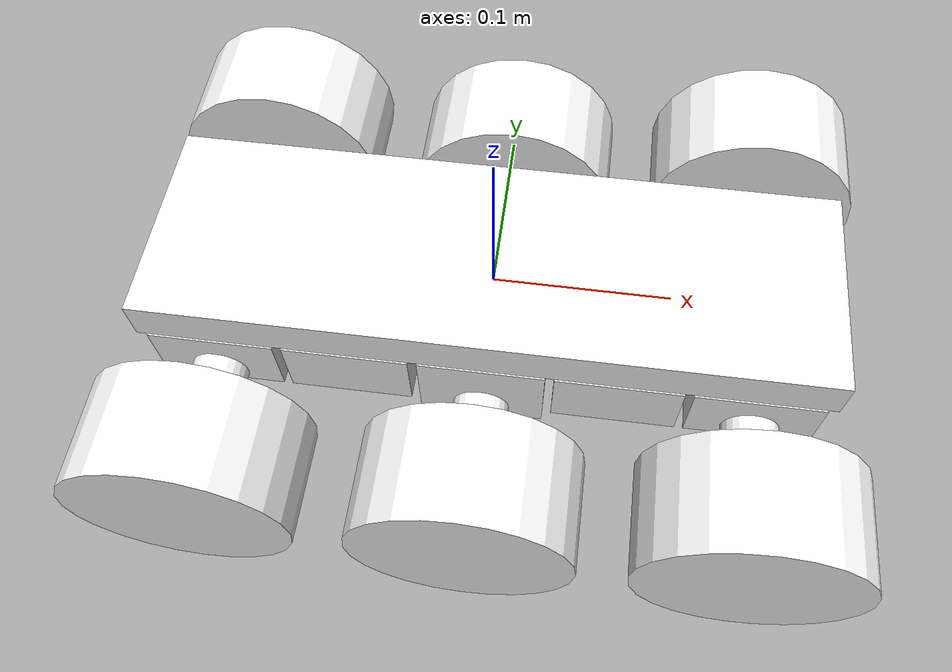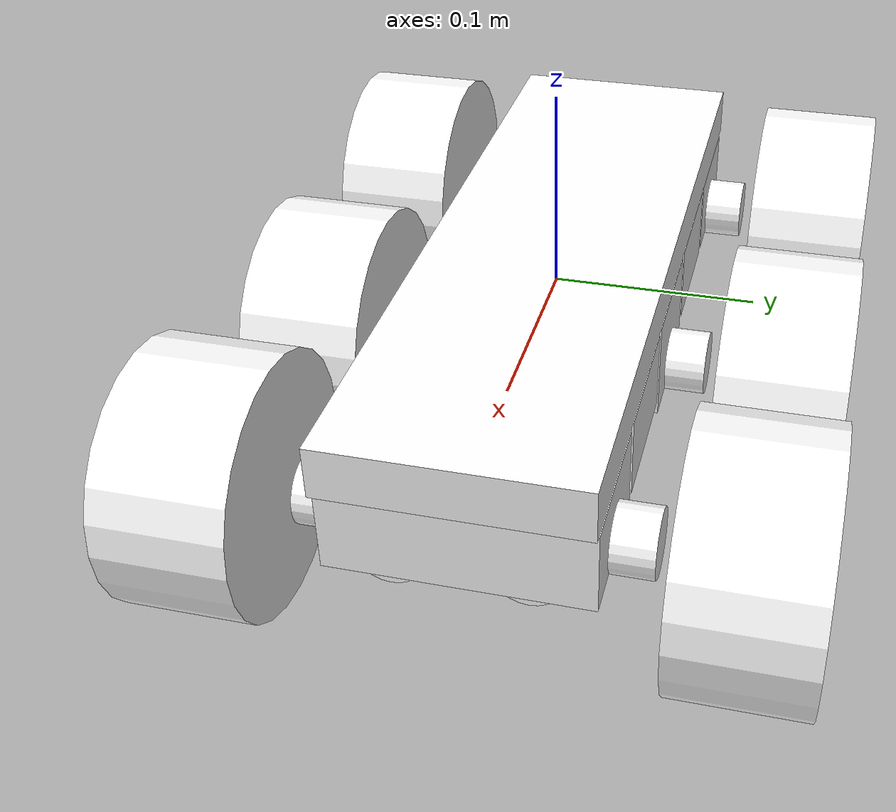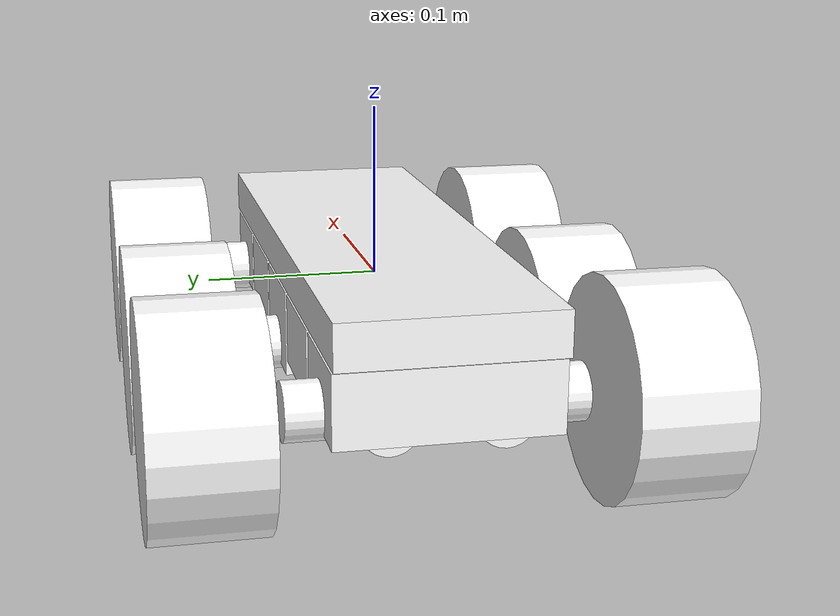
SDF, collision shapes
<sdf version="1.9">
 <model name="wildthumper_with_camera">
  <static>0</static>
  <link name="base_link">
   <inertial>
    <mass>0.01</mass>
    <inertia><ixx>0.01</ixx><ixy>0</ixy><ixz>0</ixz><iyy>0.01</iyy><iyz>0</iyz><izz>0.01</izz></inertia>
   </inertial>
   <collision name="base_link_collision">
    <geometry><box><size>0.001 0.001 0.001</size></box></geometry>
   </collision>
   <visual name="base_link_visual">
    <geometry><box><size>0.001 0.001 0.001</size></box></geometry>
    <material>
     <script><name>Gazebo/Orange</name><uri>file://media/materials/scripts/gazebo.material</uri></script>
     <diffuse>1 0.3125 0 1</diffuse>
     <ambient>1 0.3125 0 1</ambient>
    </material>
   </visual>
  </link>
  <joint name="front_small_chassis_joint" type="fixed">
   <pose relative_to="base_link">0.075 0 -0.02 0 0 0</pose>
   <parent>base_link</parent>
   <child>front_small_chassis_link</child>
   <axis>
    <dynamics><damping>1.0</damping></dynamics>
    <xyz>0 0 1</xyz>
    <limit><lower>-1e16</lower><upper>1e16</upper></limit>
   </axis>
  </joint>
  <link name="front_small_chassis_link">
   <pose relative_to="front_small_chassis_joint">0 0 0 0 0 0</pose>
   <inertial>
    <mass>0.2</mass>
    <inertia>
     <ixx>0.0002666666666666667</ixx>
     <ixy>0</ixy>
     <ixz>0</ixz>
     <iyy>0.0001083333333333333</iyy>
     <iyz>0</iyz>
     <izz>0.0003216666666666667</izz>
    </inertia>
   </inertial>
   <collision name="front_small_chassis_link_collision">
    <geometry><box><size>0.07000000000000001 0.12 0.04</size></box></geometry>
   </collision>
   <visual name="front_small_chassis_link_visual">
    <geometry>
     <mesh>
      <scale>1 1 1</scale>
      <uri>model://wildthumper/meshes/bases/small_chassis_with_frame_connector.dae</uri>
     </mesh>
    </geometry>
    <material>
     <ambient>1 1 1</ambient>
     <diffuse>1 1 1</diffuse>
     <specular>1 1 1</specular>
     <pbr>
      <metal>
       <albedo_map>model://wildthumper/materials/textures/black_metal/black_metal_diffuse.jpg</albedo_map>
       <metalness_map>model://wildthumper/materials/textures/black_metal/black_metal_metallic.jpg</metalness_map>
       <normal_map>model://wildthumper/materials/textures/black_metal/black_metal_normal.jpg</normal_map>
       <roughness_map>model://wildthumper/materials/textures/black_metal/black_metal_roughness.jpg</roughness_map>
       <roughness>1.0</roughness>
       <metalness>1.0</metalness>
      </metal>
     </pbr>
    </material>
   </visual>
  </link>
  <joint name="front_wheel_chassis_short_joint" type="fixed">
   <pose relative_to="base_link">0.15 0 -0.02 0 0 0</pose>
   <parent>base_link</parent>
   <child>front_wheel_chassis_short_link</child>
   <axis>
    <dynamics><damping>1.0</damping></dynamics>
    <xyz>0 0 1</xyz>
    <limit><lower>-1e16</lower><upper>1e16</upper></limit>
   </axis>
  </joint>
  <link name="front_wheel_chassis_short_link">
   <pose relative_to="front_wheel_chassis_short_joint">0 0 0 0 0 0</pose>
   <inertial>
    <mass>0.2</mass>
    <inertia>
     <ixx>0.0002666666666666667</ixx>
     <ixy>0</ixy>
     <ixz>0</ixz>
     <iyy>0.0001083333333333333</iyy>
     <iyz>0</iyz>
     <izz>0.0003216666666666667</izz>
    </inertia>
   </inertial>
   <collision name="front_wheel_chassis_short_link_collision">
    <geometry><box><size>0.07000000000000001 0.12 0.04</size></box></geometry>
   </collision>
   <visual name="front_wheel_chassis_short_link_visual">
    <geometry>
     <mesh><scale>1 1 1</scale><uri>model://wildthumper/meshes/bases/wheel_chassis_short.dae</uri></mesh>
    </geometry>
    <material>
     <ambient>1 1 1</ambient>
     <diffuse>1 1 1</diffuse>
     <specular>1 1 1</specular>
     <pbr>
      <metal>
       <albedo_map>model://wildthumper/materials/textures/black_metal/black_metal_diffuse.jpg</albedo_map>
       <metalness_map>model://wildthumper/materials/textures/black_metal/black_metal_metallic.jpg</metalness_map>
       <normal_map>model://wildthumper/materials/textures/black_metal/black_metal_normal.jpg</normal_map>
       <roughness_map>model://wildthumper/materials/textures/black_metal/black_metal_roughness.jpg</roughness_map>
       <roughness>1.0</roughness>
       <metalness>1.0</metalness>
      </metal>
     </pbr>
    </material>
   </visual>
  </link>
  <joint name="front_left_motor_asm_joint" type="revolute">
   <pose relative_to="front_wheel_chassis_short_link">0 0.03 -0.01 0 0 0</pose>
   <parent>front_wheel_chassis_short_link</parent>
   <child>front_left_motor_asm_link</child>
   <axis>
    <xyz>1 0 0</xyz>
    <limit><lower>-0.5</lower><upper>0.5</upper><effort>50</effort><velocity>10</velocity></limit>
    <dynamics>
     <damping>0.7</damping>
     <friction>0</friction>
     <spring_reference>0</spring_reference>
     <spring_stiffness>3</spring_stiffness>
    </dynamics>
   </axis>
   <physics>
    <provide_feedback>true</provide_feedback>
    <ode>
     <implicit_spring_damper>true</implicit_spring_damper>
     <cfm_damping>true</cfm_damping>
     <limit><cfm>0.0</cfm><erp>0.2</erp></limit>
     <provide_feedback>true</provide_feedback>
    </ode>
   </physics>
  </joint>
  <link name="front_left_motor_asm_link">
   <pose relative_to="front_left_motor_asm_joint">0 0 0 0 0 0</pose>
   <inertial>
    <pose>0 0.025 0 1.570796326794896 0 0</pose>
    <mass>0.1</mass>
    <inertia>
     <ixx>2.723333333333334e-05</ixx>
     <ixy>0</ixy>
     <ixz>0</ixz>
     <iyy>2.723333333333334e-05</iyy>
     <iyz>0</iyz>
     <izz>1.28e-05</izz>
    </inertia>
   </inertial>
   <collision name="front_left_motor_asm_link_collision">
    <pose>0 0 0 0 1.570796326794897 0</pose>
    <geometry><cylinder><length>0.064</length><radius>0.016</radius></cylinder></geometry>
   </collision>
   <collision name="front_left_motor_asm_link_collision_1">
    <pose>0 0.025 0 1.570796326794896 0 0</pose>
    <geometry><cylinder><length>0.05</length><radius>0.016</radius></cylinder></geometry>
   </collision>
   <visual name="front_left_motor_asm_link_visual">
    <geometry>
     <mesh><scale>1 1 1</scale><uri>model://wildthumper/meshes/bases/left_motor_asm.dae</uri></mesh>
    </geometry>
    <material>
     <ambient>1 1 1</ambient>
     <diffuse>1 1 1</diffuse>
     <specular>1 1 1</specular>
     <pbr>
      <metal>
       <albedo_map>model://wildthumper/materials/textures/black_metal/black_metal_diffuse.jpg</albedo_map>
       <metalness_map>model://wildthumper/materials/textures/black_metal/black_metal_metallic.jpg</metalness_map>
       <normal_map>model://wildthumper/materials/textures/black_metal/black_metal_normal.jpg</normal_map>
       <roughness_map>model://wildthumper/materials/textures/black_metal/black_metal_roughness.jpg</roughness_map>
       <roughness>1.0</roughness>
       <metalness>1.0</metalness>
      </metal>
     </pbr>
    </material>
   </visual>
  </link>
  <joint name="front_left_wheel_joint" type="revolute">
   <pose relative_to="front_left_motor_asm_link">0 0.09 0 0 0 0</pose>
   <parent>front_left_motor_asm_link</parent>
   <child>front_left_wheel_link</child>
   <axis>
    <xyz>0 1 0</xyz>
    <limit><lower>-1e16</lower><upper>1e16</upper></limit>
    <dynamics><damping>0.02</damping></dynamics>
   </axis>
  </joint>
  <link name="front_left_wheel_link">
   <pose relative_to="front_left_wheel_joint">0 0 0 0 0 0</pose>
   <inertial>
    <pose>0 0 0 1.570796326794896 0 0</pose>
    <mass>0.19</mass>
    <inertia>
     <ixx>0.0002022409166666667</ixx>
     <ixy>0</ixy>
     <ixz>0</ixz>
     <iyy>0.0002022409166666667</iyy>
     <iyz>1.203706215242022e-35</iyz>
     <izz>0.0002973904999999999</izz>
    </inertia>
   </inertial>
   <collision name="front_left_wheel_link_collision">
    <pose>0 0 0 1.570796326794896 0 0</pose>
    <geometry><cylinder><length>0.062</length><radius>0.062</radius></cylinder></geometry>
    <surface>
     <friction>
      <ode><mu>10.0</mu><mu2>10.0</mu2><fdir1>1 0 0</fdir1><slip1>0.0</slip1><slip2>0.0</slip2></ode>
     </friction>
    </surface>
   </collision>
   <collision name="front_left_wheel_link_fixed_joint_lump__front_left_wheel_adapter_link_collision_1">
    <pose>0 0 0 1.570796326794896 0 0</pose>
    <geometry><cylinder><length>0.024</length><radius>0.005</radius></cylinder></geometry>
   </collision>
   <collision name="front_left_wheel_link_fixed_joint_lump__front_left_wheel_rim_link_collision_2">
    <pose>0 0 0 1.570796326794896 0 0</pose>
    <geometry><cylinder><length>0.05</length><radius>0.03</radius></cylinder></geometry>
   </collision>
   <visual name="front_left_wheel_link_visual">
    <geometry>
     <mesh><scale>1 1 1</scale><uri>model://wildthumper/meshes/wheels/left_wheel_tyre.dae</uri></mesh>
    </geometry>
    <material>
     <ambient>1 1 1</ambient>
     <diffuse>1 1 1</diffuse>
     <specular>1 1 1</specular>
     <pbr>
      <metal>
       <albedo_map>model://wildthumper/materials/textures/rubber_01/rubber_01_diffuse.jpg</albedo_map>
       <normal_map>model://wildthumper/materials/textures/rubber_01/rubber_01_normal.jpg</normal_map>
       <roughness_map>model://wildthumper/materials/textures/rubber_01/rubber_01_roughness.jpg</roughness_map>
       <roughness>1.0</roughness>
       <metalness>0.0</metalness>
      </metal>
     </pbr>
    </material>
   </visual>
   <visual name="front_left_wheel_link_fixed_joint_lump__front_left_wheel_adapter_link_visual_1">
    <geometry>
     <mesh><scale>1 1 1</scale><uri>model://wildthumper/meshes/wheels/left_wheel_adapter.dae</uri></mesh>
    </geometry>
    <material>
     <ambient>1 1 1</ambient>
     <diffuse>1 1 1</diffuse>
     <specular>1 1 1</specular>
     <pbr>
      <metal>
       <albedo_map>model://wildthumper/materials/textures/silver_metal/silver_metal_diffuse.jpg</albedo_map>
       <metalness_map>model://wildthumper/materials/textures/silver_metal/silver_metal_metallic.jpg</metalness_map>
       <normal_map>model://wildthumper/materials/textures/silver_metal/silver_metal_normal.jpg</normal_map>
       <roughness_map>model://wildthumper/materials/textures/silver_metal/silver_metal_roughness.jpg</roughness_map>
       <roughness>1.0</roughness>
       <metalness>1.0</metalness>
      </metal>
     </pbr>
    </material>
   </visual>
   <visual name="front_left_wheel_link_fixed_joint_lump__front_left_wheel_rim_link_visual_2">
    <geometry>
     <mesh><scale>1 1 1</scale><uri>model://wildthumper/meshes/wheels/left_wheel_rim.dae</uri></mesh>
    </geometry>
    <material>
     <ambient>1 1 1</ambient>
     <diffuse>1 1 1</diffuse>
     <specular>1 1 1</specular>
     <pbr>
      <metal>
       <albedo_map>model://wildthumper/materials/textures/red_metal/red_metal_diffuse.jpg</albedo_map>
       <metalness_map>model://wildthumper/materials/textures/red_metal/red_metal_metallic.jpg</metalness_map>
       <normal_map>model://wildthumper/materials/textures/red_metal/red_metal_normal.jpg</normal_map>
       <roughness_map>model://wildthumper/materials/textures/red_metal/red_metal_roughness.jpg</roughness_map>
       <roughness>1.0</roughness>
       <metalness>1.0</metalness>
      </metal>
     </pbr>
    </material>
   </visual>
  </link>
  <joint name="front_right_motor_asm_joint" type="revolute">
   <pose relative_to="front_wheel_chassis_short_link">0 -0.03 -0.01 0 0 0</pose>
   <parent>front_wheel_chassis_short_link</parent>
   <child>front_right_motor_asm_link</child>
   <axis>
    <xyz>1 0 0</xyz>
    <limit><lower>-0.5</lower><upper>0.5</upper><effort>50</effort><velocity>10</velocity></limit>
    <dynamics>
     <damping>0.7</damping>
     <friction>0</friction>
     <spring_reference>0</spring_reference>
     <spring_stiffness>3</spring_stiffness>
    </dynamics>
   </axis>
  </joint>
  <link name="front_right_motor_asm_link">
   <pose relative_to="front_right_motor_asm_joint">0 0 0 0 0 0</pose>
   <inertial>
    <pose>0 -0.025 0 1.570796326794896 0 0</pose>
    <mass>0.1</mass>
    <inertia>
     <ixx>2.723333333333334e-05</ixx>
     <ixy>0</ixy>
     <ixz>0</ixz>
     <iyy>2.723333333333334e-05</iyy>
     <iyz>0</iyz>
     <izz>1.28e-05</izz>
    </inertia>
   </inertial>
   <collision name="front_right_motor_asm_link_collision">
    <pose>0 0 0 0 1.570796326794897 0</pose>
    <geometry><cylinder><length>0.064</length><radius>0.016</radius></cylinder></geometry>
   </collision>
   <collision name="front_right_motor_asm_link_collision_1">
    <pose>0 -0.025 0 1.570796326794896 0 0</pose>
    <geometry><cylinder><length>0.05</length><radius>0.016</radius></cylinder></geometry>
   </collision>
   <visual name="front_right_motor_asm_link_visual">
    <geometry>
     <mesh><scale>1 1 1</scale><uri>model://wildthumper/meshes/bases/right_motor_asm.dae</uri></mesh>
    </geometry>
    <material>
     <ambient>1 1 1</ambient>
     <diffuse>1 1 1</diffuse>
     <specular>1 1 1</specular>
     <pbr>
      <metal>
       <albedo_map>model://wildthumper/materials/textures/black_metal/black_metal_diffuse.jpg</albedo_map>
       <metalness_map>model://wildthumper/materials/textures/black_metal/black_metal_metallic.jpg</metalness_map>
       <normal_map>model://wildthumper/materials/textures/black_metal/black_metal_normal.jpg</normal_map>
       <roughness_map>model://wildthumper/materials/textures/black_metal/black_metal_roughness.jpg</roughness_map>
       <roughness>1.0</roughness>
       <metalness>1.0</metalness>
      </metal>
     </pbr>
    </material>
   </visual>
  </link>
  <joint name="front_right_wheel_joint" type="revolute">
   <pose relative_to="front_right_motor_asm_link">0 -0.09 0 0 0 0</pose>
   <parent>front_right_motor_asm_link</parent>
   <child>front_right_wheel_link</child>
   <axis>
    <xyz>0 1 0</xyz>
    <limit><lower>-1e16</lower><upper>1e16</upper></limit>
    <dynamics><damping>0.02</damping></dynamics>
   </axis>
  </joint>
  <link name="front_right_wheel_link">
   <pose relative_to="front_right_wheel_joint">0 0 0 0 0 0</pose>
   <inertial>
    <pose>0 0 0 1.570796326794896 0 0</pose>
    <mass>0.19</mass>
    <inertia>
     <ixx>0.0002022409166666667</ixx>
     <ixy>0</ixy>
     <ixz>0</ixz>
     <iyy>0.0002022409166666667</iyy>
     <iyz>1.203706215242022e-35</iyz>
     <izz>0.0002973904999999999</izz>
    </inertia>
   </inertial>
   <collision name="front_right_wheel_link_collision">
    <pose>0 0 0 1.570796326794896 0 0</pose>
    <geometry><cylinder><length>0.062</length><radius>0.062</radius></cylinder></geometry>
    <surface>
     <friction>
      <ode><mu>10.0</mu><mu2>10.0</mu2><fdir1>1 0 0</fdir1><slip1>0.0</slip1><slip2>0.0</slip2></ode>
     </friction>
    </surface>
   </collision>
   <collision name="front_right_wheel_link_fixed_joint_lump__front_right_wheel_adapter_link_collision_1">
    <pose>0 0 0 1.570796326794896 0 0</pose>
    <geometry><cylinder><length>0.024</length><radius>0.005</radius></cylinder></geometry>
   </collision>
   <collision name="front_right_wheel_link_fixed_joint_lump__front_right_wheel_rim_link_collision_2">
    <pose>0 0 0 1.570796326794896 0 0</pose>
    <geometry><cylinder><length>0.05</length><radius>0.03</radius></cylinder></geometry>
   </collision>
   <visual name="front_right_wheel_link_visual">
    <geometry>
     <mesh><scale>1 1 1</scale><uri>model://wildthumper/meshes/wheels/right_wheel_tyre.dae</uri></mesh>
    </geometry>
    <material>
     <ambient>1 1 1</ambient>
     <diffuse>1 1 1</diffuse>
     <specular>1 1 1</specular>
     <pbr>
      <metal>
       <albedo_map>model://wildthumper/materials/textures/rubber_01/rubber_01_diffuse.jpg</albedo_map>
       <normal_map>model://wildthumper/materials/textures/rubber_01/rubber_01_normal.jpg</normal_map>
       <roughness_map>model://wildthumper/materials/textures/rubber_01/rubber_01_roughness.jpg</roughness_map>
       <roughness>1.0</roughness>
       <metalness>0.0</metalness>
      </metal>
     </pbr>
    </material>
   </visual>
   <visual name="front_right_wheel_link_fixed_joint_lump__front_right_wheel_adapter_link_visual_1">
    <geometry>
     <mesh><scale>1 1 1</scale><uri>model://wildthumper/meshes/wheels/right_wheel_adapter.dae</uri></mesh>
    </geometry>
    <material>
     <ambient>1 1 1</ambient>
     <diffuse>1 1 1</diffuse>
     <specular>1 1 1</specular>
     <pbr>
      <metal>
       <albedo_map>model://wildthumper/materials/textures/silver_metal/silver_metal_diffuse.jpg</albedo_map>
       <metalness_map>model://wildthumper/materials/textures/silver_metal/silver_metal_metallic.jpg</metalness_map>
       <normal_map>model://wildthumper/materials/textures/silver_metal/silver_metal_normal.jpg</normal_map>
       <roughness_map>model://wildthumper/materials/textures/silver_metal/silver_metal_roughness.jpg</roughness_map>
       <roughness>1.0</roughness>
       <metalness>1.0</metalness>
      </metal>
     </pbr>
    </material>
   </visual>
   <visual name="front_right_wheel_link_fixed_joint_lump__front_right_wheel_rim_link_visual_2">
    <geometry>
     <mesh><scale>1 1 1</scale><uri>model://wildthumper/meshes/wheels/right_wheel_rim.dae</uri></mesh>
    </geometry>
    <material>
     <ambient>1 1 1</ambient>
     <diffuse>1 1 1</diffuse>
     <specular>1 1 1</specular>
     <pbr>
      <metal>
       <albedo_map>model://wildthumper/materials/textures/red_metal/red_metal_diffuse.jpg</albedo_map>
       <metalness_map>model://wildthumper/materials/textures/red_metal/red_metal_metallic.jpg</metalness_map>
       <normal_map>model://wildthumper/materials/textures/red_metal/red_metal_normal.jpg</normal_map>
       <roughness_map>model://wildthumper/materials/textures/red_metal/red_metal_roughness.jpg</roughness_map>
       <roughness>1.0</roughness>
       <metalness>1.0</metalness>
      </metal>
     </pbr>
    </material>
   </visual>
  </link>
  <joint name="mid_wheel_chassis_long_joint" type="fixed">
   <pose relative_to="base_link">0 0 -0.025 0 0 0</pose>
   <parent>base_link</parent>
   <child>mid_wheel_chassis_long_link</child>
   <axis>
    <dynamics><damping>1.0</damping></dynamics>
    <xyz>0 0 1</xyz>
    <limit><lower>-1e16</lower><upper>1e16</upper></limit>
   </axis>
  </joint>
  <link name="mid_wheel_chassis_long_link">
   <pose relative_to="mid_wheel_chassis_long_joint">0 0 0 0 0 0</pose>
   <inertial>
    <mass>0.2</mass>
    <inertia>
     <ixx>0.0002816666666666667</ixx>
     <ixy>0</ixy>
     <ixz>0</ixz>
     <iyy>0.0001233333333333334</iyy>
     <iyz>0</iyz>
     <izz>0.0003216666666666667</izz>
    </inertia>
   </inertial>
   <collision name="mid_wheel_chassis_long_link_collision">
    <geometry><box><size>0.07000000000000001 0.12 0.05</size></box></geometry>
   </collision>
   <visual name="mid_wheel_chassis_long_link_visual">
    <pose>0 0 0.005 0 0 0</pose>
    <geometry>
     <mesh><scale>1 1 1</scale><uri>model://wildthumper/meshes/bases/wheel_chassis_long.dae</uri></mesh>
    </geometry>
    <material>
     <ambient>1 1 1</ambient>
     <diffuse>1 1 1</diffuse>
     <specular>1 1 1</specular>
     <pbr>
      <metal>
       <albedo_map>model://wildthumper/materials/textures/black_metal/black_metal_diffuse.jpg</albedo_map>
       <metalness_map>model://wildthumper/materials/textures/black_metal/black_metal_metallic.jpg</metalness_map>
       <normal_map>model://wildthumper/materials/textures/black_metal/black_metal_normal.jpg</normal_map>
       <roughness_map>model://wildthumper/materials/textures/black_metal/black_metal_roughness.jpg</roughness_map>
       <roughness>1.0</roughness>
       <metalness>1.0</metalness>
      </metal>
     </pbr>
    </material>
   </visual>
  </link>
  <joint name="mid_left_motor_asm_joint" type="revolute">
   <pose relative_to="mid_wheel_chassis_long_link">0 0.03 -0.015 0 0 0</pose>
   <parent>mid_wheel_chassis_long_link</parent>
   <child>mid_left_motor_asm_link</child>
   <axis>
    <xyz>1 0 0</xyz>
    <limit><lower>-0.5</lower><upper>0.5</upper><effort>50</effort><velocity>10</velocity></limit>
    <dynamics>
     <damping>0.7</damping>
     <friction>0</friction>
     <spring_reference>0</spring_reference>
     <spring_stiffness>3</spring_stiffness>
    </dynamics>
   </axis>
  </joint>
  <link name="mid_left_motor_asm_link">
   <pose relative_to="mid_left_motor_asm_joint">0 0 0 0 0 0</pose>
   <inertial>
    <pose>0 0.025 0 1.570796326794896 0 0</pose>
    <mass>0.1</mass>
    <inertia>
     <ixx>2.723333333333334e-05</ixx>
     <ixy>0</ixy>
     <ixz>0</ixz>
     <iyy>2.723333333333334e-05</iyy>
     <iyz>0</iyz>
     <izz>1.28e-05</izz>
    </inertia>
   </inertial>
   <collision name="mid_left_motor_asm_link_collision">
    <pose>0 0 0 0 1.570796326794897 0</pose>
    <geometry><cylinder><length>0.064</length><radius>0.016</radius></cylinder></geometry>
   </collision>
   <collision name="mid_left_motor_asm_link_collision_1">
    <pose>0 0.025 0 1.570796326794896 0 0</pose>
    <geometry><cylinder><length>0.05</length><radius>0.016</radius></cylinder></geometry>
   </collision>
   <visual name="mid_left_motor_asm_link_visual">
    <geometry>
     <mesh><scale>1 1 1</scale><uri>model://wildthumper/meshes/bases/left_motor_asm.dae</uri></mesh>
    </geometry>
    <material>
     <ambient>1 1 1</ambient>
     <diffuse>1 1 1</diffuse>
     <specular>1 1 1</specular>
     <pbr>
      <metal>
       <albedo_map>model://wildthumper/materials/textures/black_metal/black_metal_diffuse.jpg</albedo_map>
       <metalness_map>model://wildthumper/materials/textures/black_metal/black_metal_metallic.jpg</metalness_map>
       <normal_map>model://wildthumper/materials/textures/black_metal/black_metal_normal.jpg</normal_map>
       <roughness_map>model://wildthumper/materials/textures/black_metal/black_metal_roughness.jpg</roughness_map>
       <roughness>1.0</roughness>
       <metalness>1.0</metalness>
      </metal>
     </pbr>
    </material>
   </visual>
  </link>
  <joint name="mid_left_wheel_joint" type="revolute">
   <pose relative_to="mid_left_motor_asm_link">0 0.09 0 0 0 0</pose>
   <parent>mid_left_motor_asm_link</parent>
   <child>mid_left_wheel_link</child>
   <axis>
    <xyz>0 1 0</xyz>
    <limit><lower>-1e16</lower><upper>1e16</upper></limit>
    <dynamics><damping>0.02</damping></dynamics>
   </axis>
  </joint>
  <link name="mid_left_wheel_link">
   <pose relative_to="mid_left_wheel_joint">0 0 0 0 0 0</pose>
   <inertial>
    <pose>0 0 0 1.570796326794896 0 0</pose>
    <mass>0.19</mass>
    <inertia>
     <ixx>0.0002022409166666667</ixx>
     <ixy>0</ixy>
     <ixz>0</ixz>
     <iyy>0.0002022409166666667</iyy>
     <iyz>1.203706215242022e-35</iyz>
     <izz>0.0002973904999999999</izz>
    </inertia>
   </inertial>
   <collision name="mid_left_wheel_link_collision">
    <pose>0 0 0 1.570796326794896 0 0</pose>
    <geometry><cylinder><length>0.062</length><radius>0.062</radius></cylinder></geometry>
    <surface>
     <friction>
      <ode><mu>10.0</mu><mu2>10.0</mu2><fdir1>1 0 0</fdir1><slip1>0.0</slip1><slip2>0.0</slip2></ode>
     </friction>
    </surface>
   </collision>
   <collision name="mid_left_wheel_link_fixed_joint_lump__mid_left_wheel_adapter_link_collision_1">
    <pose>0 0 0 1.570796326794896 0 0</pose>
    <geometry><cylinder><length>0.024</length><radius>0.005</radius></cylinder></geometry>
   </collision>
   <collision name="mid_left_wheel_link_fixed_joint_lump__mid_left_wheel_rim_link_collision_2">
    <pose>0 0 0 1.570796326794896 0 0</pose>
    <geometry><cylinder><length>0.05</length><radius>0.03</radius></cylinder></geometry>
   </collision>
   <visual name="mid_left_wheel_link_visual">
    <geometry>
     <mesh><scale>1 1 1</scale><uri>model://wildthumper/meshes/wheels/left_wheel_tyre.dae</uri></mesh>
    </geometry>
    <material>
     <ambient>1 1 1</ambient>
     <diffuse>1 1 1</diffuse>
     <specular>1 1 1</specular>
     <pbr>
      <metal>
       <albedo_map>model://wildthumper/materials/textures/rubber_01/rubber_01_diffuse.jpg</albedo_map>
       <normal_map>model://wildthumper/materials/textures/rubber_01/rubber_01_normal.jpg</normal_map>
       <roughness_map>model://wildthumper/materials/textures/rubber_01/rubber_01_roughness.jpg</roughness_map>
       <roughness>1.0</roughness>
       <metalness>0.0</metalness>
      </metal>
     </pbr>
    </material>
   </visual>
   <visual name="mid_left_wheel_link_fixed_joint_lump__mid_left_wheel_adapter_link_visual_1">
    <geometry>
     <mesh><scale>1 1 1</scale><uri>model://wildthumper/meshes/wheels/left_wheel_adapter.dae</uri></mesh>
    </geometry>
    <material>
     <ambient>1 1 1</ambient>
     <diffuse>1 1 1</diffuse>
     <specular>1 1 1</specular>
     <pbr>
      <metal>
       <albedo_map>model://wildthumper/materials/textures/silver_metal/silver_metal_diffuse.jpg</albedo_map>
       <metalness_map>model://wildthumper/materials/textures/silver_metal/silver_metal_metallic.jpg</metalness_map>
       <normal_map>model://wildthumper/materials/textures/silver_metal/silver_metal_normal.jpg</normal_map>
       <roughness_map>model://wildthumper/materials/textures/silver_metal/silver_metal_roughness.jpg</roughness_map>
       <roughness>1.0</roughness>
       <metalness>1.0</metalness>
      </metal>
     </pbr>
    </material>
   </visual>
   <visual name="mid_left_wheel_link_fixed_joint_lump__mid_left_wheel_rim_link_visual_2">
    <geometry>
     <mesh><scale>1 1 1</scale><uri>model://wildthumper/meshes/wheels/left_wheel_rim.dae</uri></mesh>
    </geometry>
    <material>
     <ambient>1 1 1</ambient>
     <diffuse>1 1 1</diffuse>
     <specular>1 1 1</specular>
     <pbr>
      <metal>
       <albedo_map>model://wildthumper/materials/textures/red_metal/red_metal_diffuse.jpg</albedo_map>
       <metalness_map>model://wildthumper/materials/textures/red_metal/red_metal_metallic.jpg</metalness_map>
       <normal_map>model://wildthumper/materials/textures/red_metal/red_metal_normal.jpg</normal_map>
       <roughness_map>model://wildthumper/materials/textures/red_metal/red_metal_roughness.jpg</roughness_map>
       <roughness>1.0</roughness>
       <metalness>1.0</metalness>
      </metal>
     </pbr>
    </material>
   </visual>
  </link>
  <joint name="mid_right_motor_asm_joint" type="revolute">
   <pose relative_to="mid_wheel_chassis_long_link">0 -0.03 -0.015 0 0 0</pose>
   <parent>mid_wheel_chassis_long_link</parent>
   <child>mid_right_motor_asm_link</child>
   <axis>
    <xyz>1 0 0</xyz>
    <limit><lower>-0.5</lower><upper>0.5</upper><effort>50</effort><velocity>10</velocity></limit>
    <dynamics>
     <damping>0.7</damping>
     <friction>0</friction>
     <spring_reference>0</spring_reference>
     <spring_stiffness>3</spring_stiffness>
    </dynamics>
   </axis>
  </joint>
  <link name="mid_right_motor_asm_link">
   <pose relative_to="mid_right_motor_asm_joint">0 0 0 0 0 0</pose>
   <inertial>
    <pose>0 -0.025 0 1.570796326794896 0 0</pose>
    <mass>0.1</mass>
    <inertia>
     <ixx>2.723333333333334e-05</ixx>
     <ixy>0</ixy>
     <ixz>0</ixz>
     <iyy>2.723333333333334e-05</iyy>
     <iyz>0</iyz>
     <izz>1.28e-05</izz>
    </inertia>
   </inertial>
   <collision name="mid_right_motor_asm_link_collision">
    <pose>0 0 0 0 1.570796326794897 0</pose>
    <geometry><cylinder><length>0.064</length><radius>0.016</radius></cylinder></geometry>
   </collision>
   <collision name="mid_right_motor_asm_link_collision_1">
    <pose>0 -0.025 0 1.570796326794896 0 0</pose>
    <geometry><cylinder><length>0.05</length><radius>0.016</radius></cylinder></geometry>
   </collision>
   <visual name="mid_right_motor_asm_link_visual">
    <geometry>
     <mesh><scale>1 1 1</scale><uri>model://wildthumper/meshes/bases/right_motor_asm.dae</uri></mesh>
    </geometry>
    <material>
     <ambient>1 1 1</ambient>
     <diffuse>1 1 1</diffuse>
     <specular>1 1 1</specular>
     <pbr>
      <metal>
       <albedo_map>model://wildthumper/materials/textures/black_metal/black_metal_diffuse.jpg</albedo_map>
       <metalness_map>model://wildthumper/materials/textures/black_metal/black_metal_metallic.jpg</metalness_map>
       <normal_map>model://wildthumper/materials/textures/black_metal/black_metal_normal.jpg</normal_map>
       <roughness_map>model://wildthumper/materials/textures/black_metal/black_metal_roughness.jpg</roughness_map>
       <roughness>1.0</roughness>
       <metalness>1.0</metalness>
      </metal>
     </pbr>
    </material>
   </visual>
  </link>
  <joint name="mid_right_wheel_joint" type="revolute">
   <pose relative_to="mid_right_motor_asm_link">0 -0.09 0 0 0 0</pose>
   <parent>mid_right_motor_asm_link</parent>
   <child>mid_right_wheel_link</child>
   <axis>
    <xyz>0 1 0</xyz>
    <limit><lower>-1e16</lower><upper>1e16</upper></limit>
    <dynamics><damping>0.02</damping></dynamics>
   </axis>
  </joint>
  <link name="mid_right_wheel_link">
   <pose relative_to="mid_right_wheel_joint">0 0 0 0 0 0</pose>
   <inertial>
    <pose>0 0 0 1.570796326794896 0 0</pose>
    <mass>0.19</mass>
    <inertia>
     <ixx>0.0002022409166666667</ixx>
     <ixy>0</ixy>
     <ixz>0</ixz>
     <iyy>0.0002022409166666667</iyy>
     <iyz>1.203706215242022e-35</iyz>
     <izz>0.0002973904999999999</izz>
    </inertia>
   </inertial>
   <collision name="mid_right_wheel_link_collision">
    <pose>0 0 0 1.570796326794896 0 0</pose>
    <geometry><cylinder><length>0.062</length><radius>0.062</radius></cylinder></geometry>
    <surface>
     <friction>
      <ode><mu>10.0</mu><mu2>10.0</mu2><fdir1>1 0 0</fdir1><slip1>0.0</slip1><slip2>0.0</slip2></ode>
     </friction>
    </surface>
   </collision>
   <collision name="mid_right_wheel_link_fixed_joint_lump__mid_right_wheel_adapter_link_collision_1">
    <pose>0 0 0 1.570796326794896 0 0</pose>
    <geometry><cylinder><length>0.024</length><radius>0.005</radius></cylinder></geometry>
   </collision>
   <collision name="mid_right_wheel_link_fixed_joint_lump__mid_right_wheel_rim_link_collision_2">
    <pose>0 0 0 1.570796326794896 0 0</pose>
    <geometry><cylinder><length>0.05</length><radius>0.03</radius></cylinder></geometry>
   </collision>
   <visual name="mid_right_wheel_link_visual">
    <geometry>
     <mesh><scale>1 1 1</scale><uri>model://wildthumper/meshes/wheels/right_wheel_tyre.dae</uri></mesh>
    </geometry>
    <material>
     <ambient>1 1 1</ambient>
     <diffuse>1 1 1</diffuse>
     <specular>1 1 1</specular>
     <pbr>
      <metal>
       <albedo_map>model://wildthumper/materials/textures/rubber_01/rubber_01_diffuse.jpg</albedo_map>
       <normal_map>model://wildthumper/materials/textures/rubber_01/rubber_01_normal.jpg</normal_map>
       <roughness_map>model://wildthumper/materials/textures/rubber_01/rubber_01_roughness.jpg</roughness_map>
       <roughness>1.0</roughness>
       <metalness>0.0</metalness>
      </metal>
     </pbr>
    </material>
   </visual>
   <visual name="mid_right_wheel_link_fixed_joint_lump__mid_right_wheel_adapter_link_visual_1">
    <geometry>
     <mesh><scale>1 1 1</scale><uri>model://wildthumper/meshes/wheels/right_wheel_adapter.dae</uri></mesh>
    </geometry>
    <material>
     <ambient>1 1 1</ambient>
     <diffuse>1 1 1</diffuse>
     <specular>1 1 1</specular>
     <pbr>
      <metal>
       <albedo_map>model://wildthumper/materials/textures/silver_metal/silver_metal_diffuse.jpg</albedo_map>
       <metalness_map>model://wildthumper/materials/textures/silver_metal/silver_metal_metallic.jpg</metalness_map>
       <normal_map>model://wildthumper/materials/textures/silver_metal/silver_metal_normal.jpg</normal_map>
       <roughness_map>model://wildthumper/materials/textures/silver_metal/silver_metal_roughness.jpg</roughness_map>
       <roughness>1.0</roughness>
       <metalness>1.0</metalness>
      </metal>
     </pbr>
    </material>
   </visual>
   <visual name="mid_right_wheel_link_fixed_joint_lump__mid_right_wheel_rim_link_visual_2">
    <geometry>
     <mesh><scale>1 1 1</scale><uri>model://wildthumper/meshes/wheels/right_wheel_rim.dae</uri></mesh>
    </geometry>
    <material>
     <ambient>1 1 1</ambient>
     <diffuse>1 1 1</diffuse>
     <specular>1 1 1</specular>
     <pbr>
      <metal>
       <albedo_map>model://wildthumper/materials/textures/red_metal/red_metal_diffuse.jpg</albedo_map>
       <metalness_map>model://wildthumper/materials/textures/red_metal/red_metal_metallic.jpg</metalness_map>
       <normal_map>model://wildthumper/materials/textures/red_metal/red_metal_normal.jpg</normal_map>
       <roughness_map>model://wildthumper/materials/textures/red_metal/red_metal_roughness.jpg</roughness_map>
       <roughness>1.0</roughness>
       <metalness>1.0</metalness>
      </metal>
     </pbr>
    </material>
   </visual>
  </link>
  <joint name="rear_small_chassis_joint" type="fixed">
   <pose relative_to="base_link">-0.075 0 -0.02 0 0 0</pose>
   <parent>base_link</parent>
   <child>rear_small_chassis_link</child>
   <axis>
    <dynamics><damping>1.0</damping></dynamics>
    <xyz>0 0 1</xyz>
    <limit><lower>-1e16</lower><upper>1e16</upper></limit>
   </axis>
  </joint>
  <link name="rear_small_chassis_link">
   <pose relative_to="rear_small_chassis_joint">0 0 0 0 0 0</pose>
   <inertial>
    <mass>0.2</mass>
    <inertia>
     <ixx>0.0002666666666666667</ixx>
     <ixy>0</ixy>
     <ixz>0</ixz>
     <iyy>0.0001083333333333333</iyy>
     <iyz>0</iyz>
     <izz>0.0003216666666666667</izz>
    </inertia>
   </inertial>
   <collision name="rear_small_chassis_link_collision">
    <geometry><box><size>0.07000000000000001 0.12 0.04</size></box></geometry>
   </collision>
   <visual name="rear_small_chassis_link_visual">
    <geometry>
     <mesh>
      <scale>1 1 1</scale>
      <uri>model://wildthumper/meshes/bases/small_chassis_with_frame_connector.dae</uri>
     </mesh>
    </geometry>
    <material>
     <ambient>1 1 1</ambient>
     <diffuse>1 1 1</diffuse>
     <specular>1 1 1</specular>
     <pbr>
      <metal>
       <albedo_map>model://wildthumper/materials/textures/black_metal/black_metal_diffuse.jpg</albedo_map>
       <metalness_map>model://wildthumper/materials/textures/black_metal/black_metal_metallic.jpg</metalness_map>
       <normal_map>model://wildthumper/materials/textures/black_metal/black_metal_normal.jpg</normal_map>
       <roughness_map>model://wildthumper/materials/textures/black_metal/black_metal_roughness.jpg</roughness_map>
       <roughness>1.0</roughness>
       <metalness>1.0</metalness>
      </metal>
     </pbr>
    </material>
   </visual>
  </link>
  <joint name="rear_wheel_chassis_short_joint" type="fixed">
   <pose relative_to="base_link">-0.15 0 -0.02 0 0 0</pose>
   <parent>base_link</parent>
   <child>rear_wheel_chassis_short_link</child>
   <axis>
    <dynamics><damping>1.0</damping></dynamics>
    <xyz>0 0 1</xyz>
    <limit><lower>-1e16</lower><upper>1e16</upper></limit>
   </axis>
  </joint>
  <link name="rear_wheel_chassis_short_link">
   <pose relative_to="rear_wheel_chassis_short_joint">0 0 0 0 0 0</pose>
   <inertial>
    <mass>0.2</mass>
    <inertia>
     <ixx>0.0002666666666666667</ixx>
     <ixy>0</ixy>
     <ixz>0</ixz>
     <iyy>0.0001083333333333333</iyy>
     <iyz>0</iyz>
     <izz>0.0003216666666666667</izz>
    </inertia>
   </inertial>
   <collision name="rear_wheel_chassis_short_link_collision">
    <geometry><box><size>0.07000000000000001 0.12 0.04</size></box></geometry>
   </collision>
   <visual name="rear_wheel_chassis_short_link_visual">
    <geometry>
     <mesh><scale>1 1 1</scale><uri>model://wildthumper/meshes/bases/wheel_chassis_short.dae</uri></mesh>
    </geometry>
    <material>
     <ambient>1 1 1</ambient>
     <diffuse>1 1 1</diffuse>
     <specular>1 1 1</specular>
     <pbr>
      <metal>
       <albedo_map>model://wildthumper/materials/textures/black_metal/black_metal_diffuse.jpg</albedo_map>
       <metalness_map>model://wildthumper/materials/textures/black_metal/black_metal_metallic.jpg</metalness_map>
       <normal_map>model://wildthumper/materials/textures/black_metal/black_metal_normal.jpg</normal_map>
       <roughness_map>model://wildthumper/materials/textures/black_metal/black_metal_roughness.jpg</roughness_map>
       <roughness>1.0</roughness>
       <metalness>1.0</metalness>
      </metal>
     </pbr>
    </material>
   </visual>
  </link>
  <joint name="rear_left_motor_asm_joint" type="revolute">
   <pose relative_to="rear_wheel_chassis_short_link">0 0.03 -0.01 0 0 0</pose>
   <parent>rear_wheel_chassis_short_link</parent>
   <child>rear_left_motor_asm_link</child>
   <axis>
    <xyz>1 0 0</xyz>
    <limit><lower>-0.5</lower><upper>0.5</upper><effort>50</effort><velocity>10</velocity></limit>
    <dynamics>
     <damping>0.7</damping>
     <friction>0</friction>
     <spring_reference>0</spring_reference>
     <spring_stiffness>3</spring_stiffness>
    </dynamics>
   </axis>
  </joint>
  <link name="rear_left_motor_asm_link">
   <pose relative_to="rear_left_motor_asm_joint">0 0 0 0 0 0</pose>
   <inertial>
    <pose>0 0.025 0 1.570796326794896 0 0</pose>
    <mass>0.1</mass>
    <inertia>
     <ixx>2.723333333333334e-05</ixx>
     <ixy>0</ixy>
     <ixz>0</ixz>
     <iyy>2.723333333333334e-05</iyy>
     <iyz>0</iyz>
     <izz>1.28e-05</izz>
    </inertia>
   </inertial>
   <collision name="rear_left_motor_asm_link_collision">
    <pose>0 0 0 0 1.570796326794897 0</pose>
    <geometry><cylinder><length>0.064</length><radius>0.016</radius></cylinder></geometry>
   </collision>
   <collision name="rear_left_motor_asm_link_collision_1">
    <pose>0 0.025 0 1.570796326794896 0 0</pose>
    <geometry><cylinder><length>0.05</length><radius>0.016</radius></cylinder></geometry>
   </collision>
   <visual name="rear_left_motor_asm_link_visual">
    <geometry>
     <mesh><scale>1 1 1</scale><uri>model://wildthumper/meshes/bases/left_motor_asm.dae</uri></mesh>
    </geometry>
    <material>
     <ambient>1 1 1</ambient>
     <diffuse>1 1 1</diffuse>
     <specular>1 1 1</specular>
     <pbr>
      <metal>
       <albedo_map>model://wildthumper/materials/textures/black_metal/black_metal_diffuse.jpg</albedo_map>
       <metalness_map>model://wildthumper/materials/textures/black_metal/black_metal_metallic.jpg</metalness_map>
       <normal_map>model://wildthumper/materials/textures/black_metal/black_metal_normal.jpg</normal_map>
       <roughness_map>model://wildthumper/materials/textures/black_metal/black_metal_roughness.jpg</roughness_map>
       <roughness>1.0</roughness>
       <metalness>1.0</metalness>
      </metal>
     </pbr>
    </material>
   </visual>
  </link>
  <joint name="rear_left_wheel_joint" type="revolute">
   <pose relative_to="rear_left_motor_asm_link">0 0.09 0 0 0 0</pose>
   <parent>rear_left_motor_asm_link</parent>
   <child>rear_left_wheel_link</child>
   <axis>
    <xyz>0 1 0</xyz>
    <limit><lower>-1e16</lower><upper>1e16</upper></limit>
    <dynamics><damping>0.02</damping></dynamics>
   </axis>
  </joint>
  <link name="rear_left_wheel_link">
   <pose relative_to="rear_left_wheel_joint">0 0 0 0 0 0</pose>
   <inertial>
    <pose>0 0 0 1.570796326794896 0 0</pose>
    <mass>0.19</mass>
    <inertia>
     <ixx>0.0002022409166666667</ixx>
     <ixy>0</ixy>
     <ixz>0</ixz>
     <iyy>0.0002022409166666667</iyy>
     <iyz>1.203706215242022e-35</iyz>
     <izz>0.0002973904999999999</izz>
    </inertia>
   </inertial>
   <collision name="rear_left_wheel_link_collision">
    <pose>0 0 0 1.570796326794896 0 0</pose>
    <geometry><cylinder><length>0.062</length><radius>0.062</radius></cylinder></geometry>
    <surface>
     <friction>
      <ode><mu>10.0</mu><mu2>10.0</mu2><fdir1>1 0 0</fdir1><slip1>0.0</slip1><slip2>0.0</slip2></ode>
     </friction>
    </surface>
   </collision>
   <collision name="rear_left_wheel_link_fixed_joint_lump__rear_left_wheel_adapter_link_collision_1">
    <pose>0 0 0 1.570796326794896 0 0</pose>
    <geometry><cylinder><length>0.024</length><radius>0.005</radius></cylinder></geometry>
   </collision>
   <collision name="rear_left_wheel_link_fixed_joint_lump__rear_left_wheel_rim_link_collision_2">
    <pose>0 0 0 1.570796326794896 0 0</pose>
    <geometry><cylinder><length>0.05</length><radius>0.03</radius></cylinder></geometry>
   </collision>
   <visual name="rear_left_wheel_link_visual">
    <geometry>
     <mesh><scale>1 1 1</scale><uri>model://wildthumper/meshes/wheels/left_wheel_tyre.dae</uri></mesh>
    </geometry>
    <material>
     <ambient>1 1 1</ambient>
     <diffuse>1 1 1</diffuse>
     <specular>1 1 1</specular>
     <pbr>
      <metal>
       <albedo_map>model://wildthumper/materials/textures/rubber_01/rubber_01_diffuse.jpg</albedo_map>
       <normal_map>model://wildthumper/materials/textures/rubber_01/rubber_01_normal.jpg</normal_map>
       <roughness_map>model://wildthumper/materials/textures/rubber_01/rubber_01_roughness.jpg</roughness_map>
       <roughness>1.0</roughness>
       <metalness>0.0</metalness>
      </metal>
     </pbr>
    </material>
   </visual>
   <visual name="rear_left_wheel_link_fixed_joint_lump__rear_left_wheel_adapter_link_visual_1">
    <geometry>
     <mesh><scale>1 1 1</scale><uri>model://wildthumper/meshes/wheels/left_wheel_adapter.dae</uri></mesh>
    </geometry>
    <material>
     <ambient>1 1 1</ambient>
     <diffuse>1 1 1</diffuse>
     <specular>1 1 1</specular>
     <pbr>
      <metal>
       <albedo_map>model://wildthumper/materials/textures/silver_metal/silver_metal_diffuse.jpg</albedo_map>
       <metalness_map>model://wildthumper/materials/textures/silver_metal/silver_metal_metallic.jpg</metalness_map>
       <normal_map>model://wildthumper/materials/textures/silver_metal/silver_metal_normal.jpg</normal_map>
       <roughness_map>model://wildthumper/materials/textures/silver_metal/silver_metal_roughness.jpg</roughness_map>
       <roughness>1.0</roughness>
       <metalness>1.0</metalness>
      </metal>
     </pbr>
    </material>
   </visual>
   <visual name="rear_left_wheel_link_fixed_joint_lump__rear_left_wheel_rim_link_visual_2">
    <geometry>
     <mesh><scale>1 1 1</scale><uri>model://wildthumper/meshes/wheels/left_wheel_rim.dae</uri></mesh>
    </geometry>
    <material>
     <ambient>1 1 1</ambient>
     <diffuse>1 1 1</diffuse>
     <specular>1 1 1</specular>
     <pbr>
      <metal>
       <albedo_map>model://wildthumper/materials/textures/red_metal/red_metal_diffuse.jpg</albedo_map>
       <metalness_map>model://wildthumper/materials/textures/red_metal/red_metal_metallic.jpg</metalness_map>
       <normal_map>model://wildthumper/materials/textures/red_metal/red_metal_normal.jpg</normal_map>
       <roughness_map>model://wildthumper/materials/textures/red_metal/red_metal_roughness.jpg</roughness_map>
       <roughness>1.0</roughness>
       <metalness>1.0</metalness>
      </metal>
     </pbr>
    </material>
   </visual>
  </link>
  <joint name="rear_right_motor_asm_joint" type="revolute">
   <pose relative_to="rear_wheel_chassis_short_link">0 -0.03 -0.01 0 0 0</pose>
   <parent>rear_wheel_chassis_short_link</parent>
   <child>rear_right_motor_asm_link</child>
   <axis>
    <xyz>1 0 0</xyz>
    <limit><lower>-0.5</lower><upper>0.5</upper><effort>50</effort><velocity>10</velocity></limit>
    <dynamics>
     <damping>0.7</damping>
     <friction>0</friction>
     <spring_reference>0</spring_reference>
     <spring_stiffness>3</spring_stiffness>
    </dynamics>
   </axis>
  </joint>
  <link name="rear_right_motor_asm_link">
   <pose relative_to="rear_right_motor_asm_joint">0 0 0 0 0 0</pose>
   <inertial>
    <pose>0 -0.025 0 1.570796326794896 0 0</pose>
    <mass>0.1</mass>
    <inertia>
     <ixx>2.723333333333334e-05</ixx>
     <ixy>0</ixy>
     <ixz>0</ixz>
     <iyy>2.723333333333334e-05</iyy>
     <iyz>0</iyz>
     <izz>1.28e-05</izz>
    </inertia>
   </inertial>
   <collision name="rear_right_motor_asm_link_collision">
    <pose>0 0 0 0 1.570796326794897 0</pose>
    <geometry><cylinder><length>0.064</length><radius>0.016</radius></cylinder></geometry>
   </collision>
   <collision name="rear_right_motor_asm_link_collision_1">
    <pose>0 -0.025 0 1.570796326794896 0 0</pose>
    <geometry><cylinder><length>0.05</length><radius>0.016</radius></cylinder></geometry>
   </collision>
   <visual name="rear_right_motor_asm_link_visual">
    <geometry>
     <mesh><scale>1 1 1</scale><uri>model://wildthumper/meshes/bases/right_motor_asm.dae</uri></mesh>
    </geometry>
    <material>
     <ambient>1 1 1</ambient>
     <diffuse>1 1 1</diffuse>
     <specular>1 1 1</specular>
     <pbr>
      <metal>
       <albedo_map>model://wildthumper/materials/textures/black_metal/black_metal_diffuse.jpg</albedo_map>
       <metalness_map>model://wildthumper/materials/textures/black_metal/black_metal_metallic.jpg</metalness_map>
       <normal_map>model://wildthumper/materials/textures/black_metal/black_metal_normal.jpg</normal_map>
       <roughness_map>model://wildthumper/materials/textures/black_metal/black_metal_roughness.jpg</roughness_map>
       <roughness>1.0</roughness>
       <metalness>1.0</metalness>
      </metal>
     </pbr>
    </material>
   </visual>
  </link>
  <joint name="rear_right_wheel_joint" type="revolute">
   <pose relative_to="rear_right_motor_asm_link">0 -0.09 0 0 0 0</pose>
   <parent>rear_right_motor_asm_link</parent>
   <child>rear_right_wheel_link</child>
   <axis>
    <xyz>0 1 0</xyz>
    <limit><lower>-1e16</lower><upper>1e16</upper></limit>
    <dynamics><damping>0.02</damping></dynamics>
   </axis>
  </joint>
  <link name="rear_right_wheel_link">
   <pose relative_to="rear_right_wheel_joint">0 0 0 0 0 0</pose>
   <inertial>
    <pose>0 0 0 1.570796326794896 0 0</pose>
    <mass>0.19</mass>
    <inertia>
     <ixx>0.0002022409166666667</ixx>
     <ixy>0</ixy>
     <ixz>0</ixz>
     <iyy>0.0002022409166666667</iyy>
     <iyz>1.203706215242022e-35</iyz>
     <izz>0.0002973904999999999</izz>
    </inertia>
   </inertial>
   <collision name="rear_right_wheel_link_collision">
    <pose>0 0 0 1.570796326794896 0 0</pose>
    <geometry><cylinder><length>0.062</length><radius>0.062</radius></cylinder></geometry>
    <surface>
     <friction>
      <ode><mu>10.0</mu><mu2>10.0</mu2><fdir1>1 0 0</fdir1><slip1>0.0</slip1><slip2>0.0</slip2></ode>
     </friction>
    </surface>
   </collision>
   <collision name="rear_right_wheel_link_fixed_joint_lump__rear_right_wheel_adapter_link_collision_1">
    <pose>0 0 0 1.570796326794896 0 0</pose>
    <geometry><cylinder><length>0.024</length><radius>0.005</radius></cylinder></geometry>
   </collision>
   <collision name="rear_right_wheel_link_fixed_joint_lump__rear_right_wheel_rim_link_collision_2">
    <pose>0 0 0 1.570796326794896 0 0</pose>
    <geometry><cylinder><length>0.05</length><radius>0.03</radius></cylinder></geometry>
   </collision>
   <visual name="rear_right_wheel_link_visual">
    <geometry>
     <mesh><scale>1 1 1</scale><uri>model://wildthumper/meshes/wheels/right_wheel_tyre.dae</uri></mesh>
    </geometry>
    <material>
     <ambient>1 1 1</ambient>
     <diffuse>1 1 1</diffuse>
     <specular>1 1 1</specular>
     <pbr>
      <metal>
       <albedo_map>model://wildthumper/materials/textures/rubber_01/rubber_01_diffuse.jpg</albedo_map>
       <normal_map>model://wildthumper/materials/textures/rubber_01/rubber_01_normal.jpg</normal_map>
       <roughness_map>model://wildthumper/materials/textures/rubber_01/rubber_01_roughness.jpg</roughness_map>
       <roughness>1.0</roughness>
       <metalness>0.0</metalness>
      </metal>
     </pbr>
    </material>
   </visual>
   <visual name="rear_right_wheel_link_fixed_joint_lump__rear_right_wheel_adapter_link_visual_1">
    <geometry>
     <mesh><scale>1 1 1</scale><uri>model://wildthumper/meshes/wheels/right_wheel_adapter.dae</uri></mesh>
    </geometry>
    <material>
     <ambient>1 1 1</ambient>
     <diffuse>1 1 1</diffuse>
     <specular>1 1 1</specular>
     <pbr>
      <metal>
       <albedo_map>model://wildthumper/materials/textures/silver_metal/silver_metal_diffuse.jpg</albedo_map>
       <metalness_map>model://wildthumper/materials/textures/silver_metal/silver_metal_metallic.jpg</metalness_map>
       <normal_map>model://wildthumper/materials/textures/silver_metal/silver_metal_normal.jpg</normal_map>
       <roughness_map>model://wildthumper/materials/textures/silver_metal/silver_metal_roughness.jpg</roughness_map>
       <roughness>1.0</roughness>
       <metalness>1.0</metalness>
      </metal>
     </pbr>
    </material>
   </visual>
   <visual name="rear_right_wheel_link_fixed_joint_lump__rear_right_wheel_rim_link_visual_2">
    <geometry>
     <mesh><scale>1 1 1</scale><uri>model://wildthumper/meshes/wheels/right_wheel_rim.dae</uri></mesh>
    </geometry>
    <material>
     <ambient>1 1 1</ambient>
     <diffuse>1 1 1</diffuse>
     <specular>1 1 1</specular>
     <pbr>
      <metal>
       <albedo_map>model://wildthumper/materials/textures/red_metal/red_metal_diffuse.jpg</albedo_map>
       <metalness_map>model://wildthumper/materials/textures/red_metal/red_metal_metallic.jpg</metalness_map>
       <normal_map>model://wildthumper/materials/textures/red_metal/red_metal_normal.jpg</normal_map>
       <roughness_map>model://wildthumper/materials/textures/red_metal/red_metal_roughness.jpg</roughness_map>
       <roughness>1.0</roughness>
       <metalness>1.0</metalness>
      </metal>
     </pbr>
    </material>
   </visual>
  </link>
  <joint name="top_chassis_joint" type="fixed">
   <pose relative_to="base_link">0 0 0.0145 0 0 0</pose>
   <parent>base_link</parent>
   <child>top_chassis_link</child>
   <axis>
    <dynamics><damping>1.0</damping></dynamics>
    <xyz>0 0 1</xyz>
    <limit><lower>-1e16</lower><upper>1e16</upper></limit>
   </axis>
  </joint>
  <link name="top_chassis_link">
   <pose relative_to="top_chassis_joint">0 0 0 0 0 0</pose>
   <inertial>
    <mass>0.2</mass>
    <inertia>
     <ixx>0.0002504166666666667</ixx>
     <ixy>0</ixy>
     <ixz>0</ixz>
     <iyy>0.002417083333333333</iyy>
     <iyz>0</iyz>
     <izz>0.002646666666666667</izz>
    </inertia>
   </inertial>
   <collision name="top_chassis_link_collision">
    <geometry><box><size>0.38 0.12 0.025</size></box></geometry>
   </collision>
   <visual name="top_chassis_link_visual">
    <geometry>
     <mesh><scale>1 1 1</scale><uri>model://wildthumper/meshes/bases/top_chassis_with_standoffs.dae</uri></mesh>
    </geometry>
    <material>
     <ambient>1 1 1</ambient>
     <diffuse>1 1 1</diffuse>
     <specular>1 1 1</specular>
     <pbr>
      <metal>
       <albedo_map>model://wildthumper/materials/textures/black_metal/black_metal_diffuse.jpg</albedo_map>
       <metalness_map>model://wildthumper/materials/textures/black_metal/black_metal_metallic.jpg</metalness_map>
       <normal_map>model://wildthumper/materials/textures/black_metal/black_metal_normal.jpg</normal_map>
       <roughness_map>model://wildthumper/materials/textures/black_metal/black_metal_roughness.jpg</roughness_map>
       <roughness>1.0</roughness>
       <metalness>1.0</metalness>
      </metal>
     </pbr>
    </material>
   </visual>
  </link>
  <link name="imu_link">
   <inertial>
    <mass>0.15</mass>
    <inertia><ixx>0.00002</ixx><ixy>0</ixy><ixz>0</ixz><iyy>0.00002</iyy><iyz>0</iyz><izz>0.00002</izz></inertia>
   </inertial>
   <sensor name="imu_sensor" type="imu">
    <pose>0 0 0 3.141593 0 0</pose>
    <always_on>1</always_on>
    <update_rate>1000.0</update_rate>
   </sensor>
   <sensor name="camera" type="camera">
    <pose>0 0 0 0 -1.57 0</pose>
    <camera>
     <horizontal_fov>2.0</horizontal_fov>
     <image><width>640</width><height>480</height></image>
     <clip><near>0.05</near><far>15000</far></clip>
    </camera>
    <always_on>1</always_on>
    <update_rate>20</update_rate>
    <visualize>1</visualize>
   </sensor>
  </link>
  <joint name="imu_joint" type="revolute">
   <child>imu_link</child>
   <parent>base_link</parent>
   <axis>
    <xyz>0 0 1</xyz>
    <limit><lower>0</lower><upper>0</upper><effort>0</effort><velocity>0</velocity></limit>
    <dynamics><damping>1.0</damping></dynamics>
    <use_parent_model_frame>1</use_parent_model_frame>
   </axis>
  </joint>
  <plugin filename="libgz-sim-joint-state-publisher-system.so" name="gz::sim::systems::JointStatePublisher"/>
  <plugin filename="gz-sim-odometry-publisher-system" name="gz::sim::systems::OdometryPublisher">
   <odom_frame>odom</odom_frame>
   <robot_base_frame>base_link</robot_base_frame>
   <dimensions>3</dimensions>
  </plugin>
  <plugin filename="libgz-sim-apply-joint-force-system.so" name="gz::sim::systems::ApplyJointForce">
   <joint_name>front_left_wheel_joint</joint_name>
  </plugin>
  <plugin filename="libgz-sim-apply-joint-force-system.so" name="gz::sim::systems::ApplyJointForce">
   <joint_name>front_right_wheel_joint</joint_name>
  </plugin>
  <plugin filename="libgz-sim-apply-joint-force-system.so" name="gz::sim::systems::ApplyJointForce">
   <joint_name>mid_left_wheel_joint</joint_name>
  </plugin>
  <plugin filename="libgz-sim-apply-joint-force-system.so" name="gz::sim::systems::ApplyJointForce">
   <joint_name>mid_right_wheel_joint</joint_name>
  </plugin>
  <plugin filename="libgz-sim-apply-joint-force-system.so" name="gz::sim::systems::ApplyJointForce">
   <joint_name>rear_left_wheel_joint</joint_name>
  </plugin>
  <plugin filename="libgz-sim-apply-joint-force-system.so" name="gz::sim::systems::ApplyJointForce">
   <joint_name>rear_right_wheel_joint</joint_name>
  </plugin>
  <plugin name="ArduPilotPlugin" filename="libArduPilotPlugin.so">
   <fdm_addr>127.0.0.1</fdm_addr>
   <fdm_port_in>9012</fdm_port_in>
   <connectionTimeoutMaxCount>5</connectionTimeoutMaxCount>
   <lock_step>1</lock_step>
   <modelXYZToAirplaneXForwardZDown>0 0 0 3.141593 0 0</modelXYZToAirplaneXForwardZDown>
   <gazeboXYZToNED>0 0 0 3.141593 0 0</gazeboXYZToNED>
   <imuName>imu_sensor</imuName>
   <control channel="0">
    <jointName>front_left_wheel_joint</jointName>
    <useForce>1</useForce>
    <multiplier>46.3</multiplier>
    <offset>-0.5</offset>
    <servo_min>1000</servo_min>
    <servo_max>2000</servo_max>
    <type>VELOCITY</type>
    <p_gain>0.2</p_gain>
    <i_gain>0.06</i_gain>
    <d_gain>0.0001</d_gain>
    <i_max>1</i_max>
    <i_min>-1</i_min>
    <cmd_max>-1.0</cmd_max>
    <cmd_min>0.0</cmd_min>
   </control>
   <control channel="0">
    <jointName>mid_left_wheel_joint</jointName>
    <useForce>1</useForce>
    <multiplier>46.3</multiplier>
    <offset>-0.5</offset>
    <servo_min>1000</servo_min>
    <servo_max>2000</servo_max>
    <type>VELOCITY</type>
    <p_gain>0.2</p_gain>
    <i_gain>0.06</i_gain>
    <d_gain>0.0001</d_gain>
    <i_max>1</i_max>
    <i_min>-1</i_min>
    <cmd_max>-1.0</cmd_max>
    <cmd_min>0.0</cmd_min>
   </control>
   <control channel="0">
    <jointName>rear_left_wheel_joint</jointName>
    <useForce>1</useForce>
    <multiplier>46.3</multiplier>
    <offset>-0.5</offset>
    <servo_min>1000</servo_min>
    <servo_max>2000</servo_max>
    <type>VELOCITY</type>
    <p_gain>0.2</p_gain>
    <i_gain>0.06</i_gain>
    <d_gain>0.0001</d_gain>
    <i_max>1</i_max>
    <i_min>-1</i_min>
    <cmd_max>-1.0</cmd_max>
    <cmd_min>0.0</cmd_min>
   </control>
   <control channel="2">
    <jointName>front_right_wheel_joint</jointName>
    <useForce>1</useForce>
    <multiplier>46.3</multiplier>
    <offset>-0.5</offset>
    <servo_min>1000</servo_min>
    <servo_max>2000</servo_max>
    <type>VELOCITY</type>
    <p_gain>0.2</p_gain>
    <i_gain>0.06</i_gain>
    <d_gain>0.0001</d_gain>
    <i_max>1</i_max>
    <i_min>-1</i_min>
    <cmd_max>-1.0</cmd_max>
    <cmd_min>0.0</cmd_min>
   </control>
   <control channel="2">
    <jointName>mid_right_wheel_joint</jointName>
    <useForce>1</useForce>
    <multiplier>46.3</multiplier>
    <offset>-0.5</offset>
    <servo_min>1000</servo_min>
    <servo_max>2000</servo_max>
    <type>VELOCITY</type>
    <p_gain>0.2</p_gain>
    <i_gain>0.06</i_gain>
    <d_gain>0.0001</d_gain>
    <i_max>1</i_max>
    <i_min>-1</i_min>
    <cmd_max>-1.0</cmd_max>
    <cmd_min>0.0</cmd_min>
   </control>
   <control channel="2">
    <jointName>rear_right_wheel_joint</jointName>
    <useForce>1</useForce>
    <multiplier>46.3</multiplier>
    <offset>-0.5</offset>
    <servo_min>1000</servo_min>
    <servo_max>2000</servo_max>
    <type>VELOCITY</type>
    <p_gain>0.2</p_gain>
    <i_gain>0.06</i_gain>
    <d_gain>0.0001</d_gain>
    <i_max>1</i_max>
    <i_min>-1</i_min>
    <cmd_max>-1.0</cmd_max>
    <cmd_min>0.0</cmd_min>
   </control>
  </plugin>
 </model>
</sdf>
